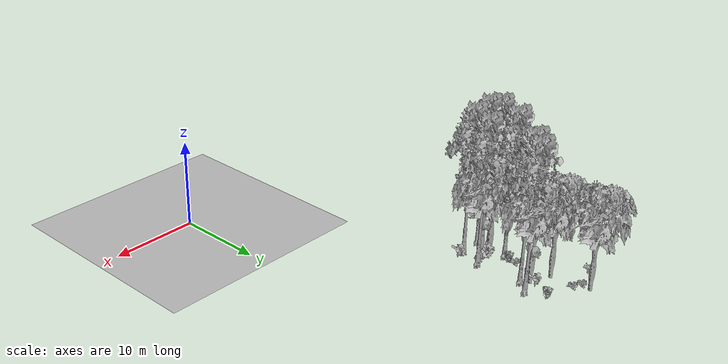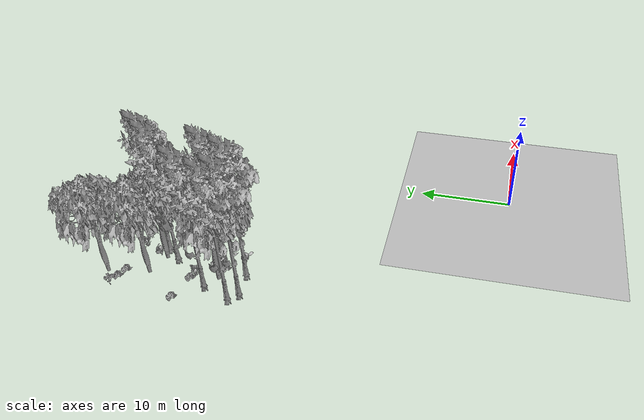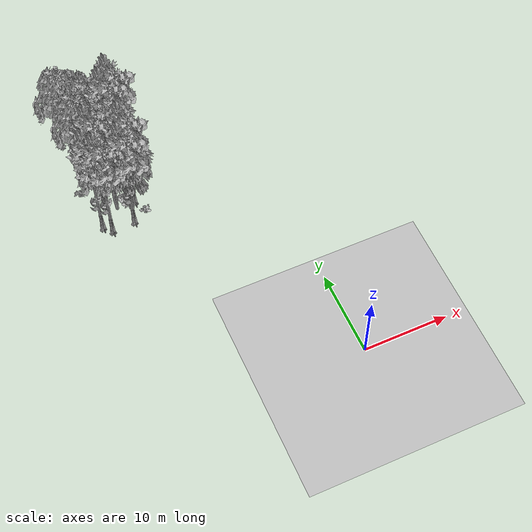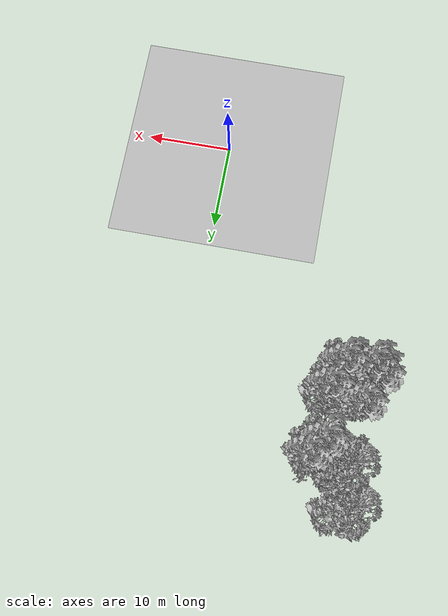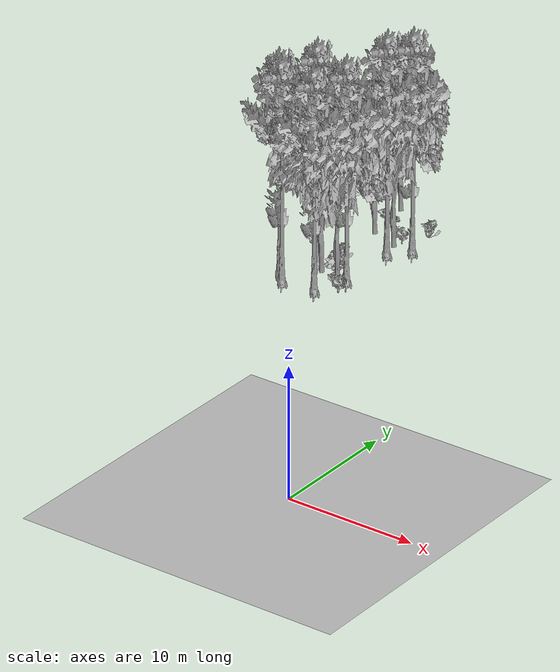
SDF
<sdf version="1.7">
 <world name="default">
  <model name="ground_plane">
   <static>1</static>
   <link name="link">
    <collision name="collision">
     <pose>-50 0 0 0 -0 0</pose>
     <geometry><plane><normal>0 0 1</normal><size>80 80</size></plane></geometry>
     <surface><contact><ode><min_depth>0.01</min_depth><max_vel>0</max_vel></ode></contact></surface>
    </collision>
    <visual name="grass">
     <cast_shadows>0</cast_shadows>
     <geometry>
      <mesh>
       <scale>0.46714285714285714 0.46714285714285714 0.1</scale>
       <uri>file://grass_plane/meshes/grass_plane.dae</uri>
      </mesh>
     </geometry>
    </visual>
   </link>
  </model>
  <model name="Tree 13">
   <static>1</static>
   <pose>-16.80717725692306 25.77402200515138 0 1.57079 -0 0</pose>
   <link name="link">
    <collision name="collision">
     <geometry><mesh><scale>3.5 5 3.5</scale><uri>model://tree_9/meshes/tree_9.obj</uri></mesh></geometry>
    </collision>
    <visual name="visual">
     <geometry><mesh><scale>3.5 5 3.5</scale><uri>model://tree_9/meshes/tree_9.obj</uri></mesh></geometry>
    </visual>
   </link>
  </model>
  <model name="Tree 81">
   <static>1</static>
   <pose>-18.603165856806694 35.59474999202928 0 1.57079 -0 0</pose>
   <link name="link">
    <collision name="collision">
     <geometry><mesh><scale>3.5 5 3.5</scale><uri>model://tree_2/meshes/tree_2.obj</uri></mesh></geometry>
    </collision>
    <visual name="visual">
     <geometry><mesh><scale>3.5 5 3.5</scale><uri>model://tree_2/meshes/tree_2.obj</uri></mesh></geometry>
    </visual>
   </link>
  </model>
  <model name="Tree 119">
   <static>1</static>
   <pose>-19.284862099927334 39.84121734459971 0 1.57079 -0 0</pose>
   <link name="link">
    <collision name="collision">
     <geometry><mesh><scale>3.5 5 3.5</scale><uri>model://tree_2/meshes/tree_2.obj</uri></mesh></geometry>
    </collision>
    <visual name="visual">
     <geometry><mesh><scale>3.5 5 3.5</scale><uri>model://tree_2/meshes/tree_2.obj</uri></mesh></geometry>
    </visual>
   </link>
  </model>
  <model name="Tree 193">
   <static>1</static>
   <pose>-18.06714632989671 28.26169509443892 0 1.57079 -0 0</pose>
   <link name="link">
    <collision name="collision">
     <geometry><mesh><scale>3.5 5 3.5</scale><uri>model://tree_2/meshes/tree_2.obj</uri></mesh></geometry>
    </collision>
    <visual name="visual">
     <geometry><mesh><scale>3.5 5 3.5</scale><uri>model://tree_2/meshes/tree_2.obj</uri></mesh></geometry>
    </visual>
   </link>
  </model>
  <model name="Tree 198">
   <static>1</static>
   <pose>-20.415623564718242 26.494441253697573 0 1.57079 -0 0</pose>
   <link name="link">
    <collision name="collision">
     <geometry><mesh><scale>3.5 5 3.5</scale><uri>model://tree_9/meshes/tree_9.obj</uri></mesh></geometry>
    </collision>
    <visual name="visual">
     <geometry><mesh><scale>3.5 5 3.5</scale><uri>model://tree_9/meshes/tree_9.obj</uri></mesh></geometry>
    </visual>
   </link>
  </model>
  <model name="Tree 382">
   <static>1</static>
   <pose>-15.988163999282975 33.60396711183712 0 1.57079 -0 0</pose>
   <link name="link">
    <collision name="collision">
     <geometry><mesh><scale>3.5 5 3.5</scale><uri>model://tree_9/meshes/tree_9.obj</uri></mesh></geometry>
    </collision>
    <visual name="visual">
     <geometry><mesh><scale>3.5 5 3.5</scale><uri>model://tree_9/meshes/tree_9.obj</uri></mesh></geometry>
    </visual>
   </link>
  </model>
  <model name="Tree 499">
   <static>1</static>
   <pose>-16.22828270546447 34.65418945632295 0 1.57079 -0 0</pose>
   <link name="link">
    <collision name="collision">
     <geometry><mesh><scale>3.5 5 3.5</scale><uri>model://tree_2/meshes/tree_2.obj</uri></mesh></geometry>
    </collision>
    <visual name="visual">
     <geometry><mesh><scale>3.5 5 3.5</scale><uri>model://tree_2/meshes/tree_2.obj</uri></mesh></geometry>
    </visual>
   </link>
  </model>
  <model name="Tree 525">
   <static>1</static>
   <pose>-19.178695208371227 29.446096310748175 0 1.57079 -0 0</pose>
   <link name="link">
    <collision name="collision">
     <geometry><mesh><scale>3.5 5 3.5</scale><uri>model://tree_9/meshes/tree_9.obj</uri></mesh></geometry>
    </collision>
    <visual name="visual">
     <geometry><mesh><scale>3.5 5 3.5</scale><uri>model://tree_9/meshes/tree_9.obj</uri></mesh></geometry>
    </visual>
   </link>
  </model>
  <model name="Tree 526">
   <static>1</static>
   <pose>-14.722171810949323 35.03354051239232 0 1.57079 -0 0</pose>
   <link name="link">
    <collision name="collision">
     <geometry><mesh><scale>3.5 5 3.5</scale><uri>model://tree_9/meshes/tree_9.obj</uri></mesh></geometry>
    </collision>
    <visual name="visual">
     <geometry><mesh><scale>3.5 5 3.5</scale><uri>model://tree_9/meshes/tree_9.obj</uri></mesh></geometry>
    </visual>
   </link>
  </model>
  <model name="Tree 540">
   <static>1</static>
   <pose>-16.603794299294943 28.1687212642113 0 1.57079 -0 0</pose>
   <link name="link">
    <collision name="collision">
     <geometry><mesh><scale>3.5 5 3.5</scale><uri>model://tree_2/meshes/tree_2.obj</uri></mesh></geometry>
    </collision>
    <visual name="visual">
     <geometry><mesh><scale>3.5 5 3.5</scale><uri>model://tree_2/meshes/tree_2.obj</uri></mesh></geometry>
    </visual>
   </link>
  </model>
  <model name="Tree 542">
   <static>1</static>
   <pose>-15.801471024132784 28.34639211449121 0 1.57079 -0 0</pose>
   <link name="link">
    <collision name="collision">
     <geometry><mesh><scale>3.5 5 3.5</scale><uri>model://tree_9/meshes/tree_9.obj</uri></mesh></geometry>
    </collision>
    <visual name="visual">
     <geometry><mesh><scale>3.5 5 3.5</scale><uri>model://tree_9/meshes/tree_9.obj</uri></mesh></geometry>
    </visual>
   </link>
  </model>
  <model name="Tree 598">
   <static>1</static>
   <pose>-19.554134493663646 25.57607497486258 0 1.57079 -0 0</pose>
   <link name="link">
    <collision name="collision">
     <geometry><mesh><scale>3.5 5 3.5</scale><uri>model://tree_9/meshes/tree_9.obj</uri></mesh></geometry>
    </collision>
    <visual name="visual">
     <geometry><mesh><scale>3.5 5 3.5</scale><uri>model://tree_9/meshes/tree_9.obj</uri></mesh></geometry>
    </visual>
   </link>
  </model>
  <model name="Bush 130">
   <static>1</static>
   <pose>-16.943125159767806 28.448763814615447 0 1.57079 -0 0</pose>
   <link name="link">
    <collision name="collision">
     <geometry><mesh><scale>2 2 2</scale><uri>model://bush_1/meshes/bush_1.obj</uri></mesh></geometry>
     <surface><contact><collide_without_contact>false</collide_without_contact></contact></surface>
    </collision>
    <visual name="visual">
     <geometry><mesh><scale>2 2 2</scale><uri>model://bush_1/meshes/bush_1.obj</uri></mesh></geometry>
    </visual>
   </link>
  </model>
  <model name="Bush 323">
   <static>1</static>
   <pose>-18.4997772960953 31.20176604158017 0 1.57079 -0 0</pose>
   <link name="link">
    <collision name="collision">
     <geometry><mesh><scale>2 2 2</scale><uri>model://bush_2/meshes/bush_2.obj</uri></mesh></geometry>
     <surface><contact><collide_without_contact>false</collide_without_contact></contact></surface>
    </collision>
    <visual name="visual">
     <geometry><mesh><scale>2 2 2</scale><uri>model://bush_2/meshes/bush_2.obj</uri></mesh></geometry>
    </visual>
   </link>
  </model>
  <model name="Bush 404">
   <static>1</static>
   <pose>-19.74104847686416 38.5974192059645 0 1.57079 -0 0</pose>
   <link name="link">
    <collision name="collision">
     <geometry><mesh><scale>2 2 2</scale><uri>model://bush_2/meshes/bush_2.obj</uri></mesh></geometry>
     <surface><contact><collide_without_contact>false</collide_without_contact></contact></surface>
    </collision>
    <visual name="visual">
     <geometry><mesh><scale>2 2 2</scale><uri>model://bush_2/meshes/bush_2.obj</uri></mesh></geometry>
    </visual>
   </link>
  </model>
  <model name="Bush 407">
   <static>1</static>
   <pose>-14.952821237197053 37.473310079680004 0 1.57079 -0 0</pose>
   <link name="link">
    <collision name="collision">
     <geometry><mesh><scale>2 2 2</scale><uri>model://bush_4/meshes/bush_4.obj</uri></mesh></geometry>
     <surface><contact><collide_without_contact>false</collide_without_contact></contact></surface>
    </collision>
    <visual name="visual">
     <geometry><mesh><scale>2 2 2</scale><uri>model://bush_4/meshes/bush_4.obj</uri></mesh></geometry>
    </visual>
   </link>
  </model>
  <model name="Bush 438">
   <static>1</static>
   <pose>-21.387249072234056 32.00258069612866 0 1.57079 -0 0</pose>
   <link name="link">
    <collision name="collision">
     <geometry><mesh><scale>2 2 2</scale><uri>model://bush_2/meshes/bush_2.obj</uri></mesh></geometry>
     <surface><contact><collide_without_contact>false</collide_without_contact></contact></surface>
    </collision>
    <visual name="visual">
     <geometry><mesh><scale>2 2 2</scale><uri>model://bush_2/meshes/bush_2.obj</uri></mesh></geometry>
    </visual>
   </link>
  </model>
  <model name="Bush 445">
   <static>1</static>
   <pose>-21.04381757679954 38.71390558407754 0 1.57079 -0 0</pose>
   <link name="link">
    <collision name="collision">
     <geometry><mesh><scale>2 2 2</scale><uri>model://bush_5/meshes/bush_5.obj</uri></mesh></geometry>
     <surface><contact><collide_without_contact>false</collide_without_contact></contact></surface>
    </collision>
    <visual name="visual">
     <geometry><mesh><scale>2 2 2</scale><uri>model://bush_5/meshes/bush_5.obj</uri></mesh></geometry>
    </visual>
   </link>
  </model>
  <model name="Bush 516">
   <static>1</static>
   <pose>-18.73667018828716 38.13134829354128 0 1.57079 -0 0</pose>
   <link name="link">
    <collision name="collision">
     <geometry><mesh><scale>2 2 2</scale><uri>model://bush_2/meshes/bush_2.obj</uri></mesh></geometry>
     <surface><contact><collide_without_contact>false</collide_without_contact></contact></surface>
    </collision>
    <visual name="visual">
     <geometry><mesh><scale>2 2 2</scale><uri>model://bush_2/meshes/bush_2.obj</uri></mesh></geometry>
    </visual>
   </link>
  </model>
  <model name="Bush 525">
   <static>1</static>
   <pose>-17.9837753581987 30.722387934186727 0 1.57079 -0 0</pose>
   <link name="link">
    <collision name="collision">
     <geometry><mesh><scale>2 2 2</scale><uri>model://bush_4/meshes/bush_4.obj</uri></mesh></geometry>
     <surface><contact><collide_without_contact>false</collide_without_contact></contact></surface>
    </collision>
    <visual name="visual">
     <geometry><mesh><scale>2 2 2</scale><uri>model://bush_4/meshes/bush_4.obj</uri></mesh></geometry>
    </visual>
   </link>
  </model>
  <model name="Bush 566">
   <static>1</static>
   <pose>-15.93534449329698 35.43446768240332 0 1.57079 -0 0</pose>
   <link name="link">
    <collision name="collision">
     <geometry><mesh><scale>2 2 2</scale><uri>model://bush_0/meshes/bush_0.obj</uri></mesh></geometry>
     <surface><contact><collide_without_contact>false</collide_without_contact></contact></surface>
    </collision>
    <visual name="visual">
     <geometry><mesh><scale>2 2 2</scale><uri>model://bush_0/meshes/bush_0.obj</uri></mesh></geometry>
    </visual>
   </link>
  </model>
  <model name="Bush 579">
   <static>1</static>
   <pose>-15.068030601626322 26.311806948696912 0 1.57079 -0 0</pose>
   <link name="link">
    <collision name="collision">
     <geometry><mesh><scale>2 2 2</scale><uri>model://bush_0/meshes/bush_0.obj</uri></mesh></geometry>
     <surface><contact><collide_without_contact>false</collide_without_contact></contact></surface>
    </collision>
    <visual name="visual">
     <geometry><mesh><scale>2 2 2</scale><uri>model://bush_0/meshes/bush_0.obj</uri></mesh></geometry>
    </visual>
   </link>
  </model>
  <model name="Bush 624">
   <static>1</static>
   <pose>-16.56911542014554 28.0391065899627 0 1.57079 -0 0</pose>
   <link name="link">
    <collision name="collision">
     <geometry><mesh><scale>2 2 2</scale><uri>model://bush_2/meshes/bush_2.obj</uri></mesh></geometry>
     <surface><contact><collide_without_contact>false</collide_without_contact></contact></surface>
    </collision>
    <visual name="visual">
     <geometry><mesh><scale>2 2 2</scale><uri>model://bush_2/meshes/bush_2.obj</uri></mesh></geometry>
    </visual>
   </link>
  </model>
 </world>
</sdf>
